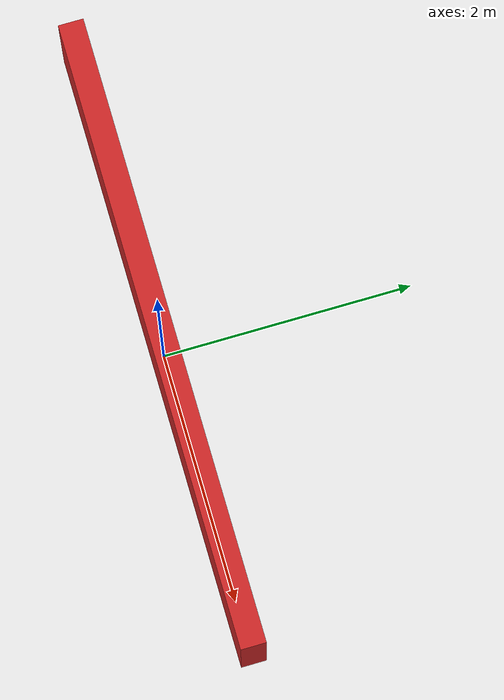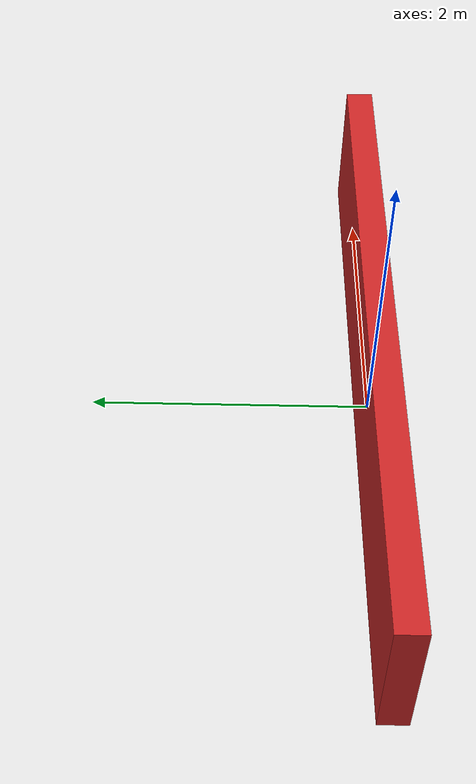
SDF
<?xml version="1.0" ?>
<sdf version="1.6">
  <model name="pist">
    <static>true</static>
    <link name="link">
      <pose>0 0 0.5 0 0 0</pose>
      <collision name="collision">
        <geometry>
          <box>
            <size>5 0.2 1</size>
          </box>
        </geometry>
      </collision>
      <visual name="visual">
        <geometry>
          <box>
            <size>5 0.2 1</size>
          </box>
        </geometry>
        <material>
          <script>
            <uri>file://media/materials/scripts/gazebo.material</uri>
            <name>Gazebo/Red</name>
          </script>
        </material>
      </visual>
    </link>
  </model>
</sdf>
